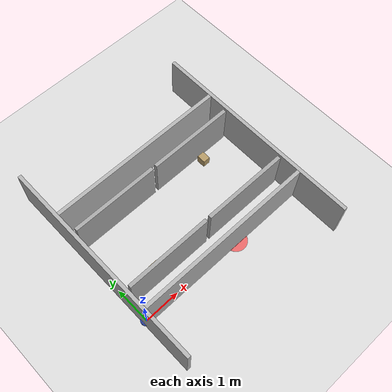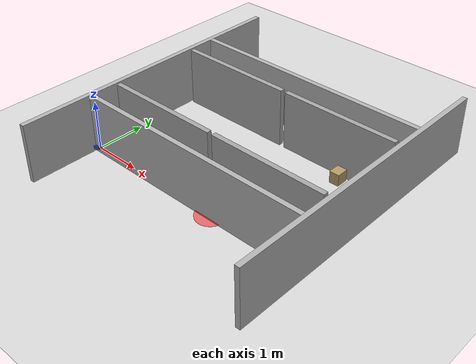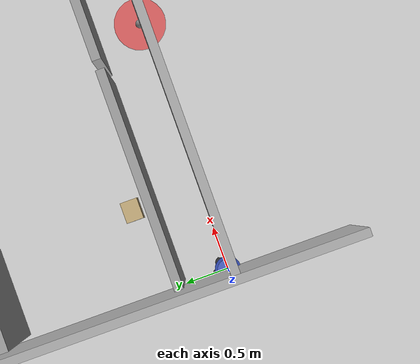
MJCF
<mujoco model="lab_corridor">
  <include file="../assets/lekiwi_base.xml"/>

  <worldbody>
    <!-- Long corridor: 1.5m wide, 5m long passage -->
    <!-- Outer walls -->
    <geom name="wall_north" type="box" size="2.5 0.05 0.6" pos="2.5 3.05 0.6" rgba="0.7 0.7 0.7 1"/>
    <geom name="wall_south" type="box" size="2.5 0.05 0.6" pos="2.5 -0.05 0.6" rgba="0.7 0.7 0.7 1"/>
    <geom name="wall_east"  type="box" size="0.05 3.0 0.6" pos="5.05 1.5 0.6" rgba="0.7 0.7 0.7 1"/>
    <geom name="wall_west"  type="box" size="0.05 3.0 0.6" pos="-0.05 1.5 0.6" rgba="0.7 0.7 0.7 1"/>

    <!-- Corridor inner walls (lower half) -->
    <geom name="corr_bottom_left"  type="box" size="1.2 0.05 0.6" pos="1.25 0.55 0.6" rgba="0.65 0.65 0.65 1"/>
    <geom name="corr_bottom_right" type="box" size="1.2 0.05 0.6" pos="3.75 0.55 0.6" rgba="0.65 0.65 0.65 1"/>

    <!-- Corridor inner walls (upper half) -->
    <geom name="corr_top_left"  type="box" size="1.2 0.05 0.6" pos="1.25 2.45 0.6" rgba="0.65 0.65 0.65 1"/>
    <geom name="corr_top_right" type="box" size="1.2 0.05 0.6" pos="3.75 2.45 0.6" rgba="0.65 0.65 0.65 1"/>

    <!-- Clutter along corridor walls: small boxes -->
    <body name="clutter_1" pos="1.0 0.8 0.15">
      <geom name="cb1" type="box" size="0.12 0.10 0.12" rgba="0.8 0.7 0.5 1" mass="1.0"/>
      <freejoint/>
    </body>
    <body name="clutter_2" pos="4.0 2.2 0.15">
      <geom name="cb2" type="box" size="0.10 0.12 0.12" rgba="0.7 0.6 0.4 1" mass="1.0"/>
      <freejoint/>
    </body>
  </worldbody>
</mujoco>

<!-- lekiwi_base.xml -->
<mujoco model="lekiwi_base">
  <compiler angle="degree" meshdir="assets"/>

  <option timestep="0.005" gravity="0 0 -9.81">
    <flag contact="enable" gravity="enable"/>
  </option>

  <default>
    <geom type="cylinder" density="500" friction="0.6 0.3 0.3" condim="3"/>
    <joint type="hinge" armature="0.001" damping="0.01"/>
    <default class="floor">
      <geom type="plane" size="10 10 0.1" rgba="0.85 0.85 0.85 1"/>
    </default>
    <default class="wall">
      <geom type="box" rgba="0.7 0.7 0.7 1" density="1000"/>
    </default>
  </default>

  <!-- ====== World floor ====== -->
  <worldbody>
    <geom class="floor" pos="0 0 0"/>
    <light directional="true" pos="4 0 8" dir="0 0 -1" diffuse="0.9 0.9 0.9"/>
    <light directional="true" pos="-4 4 6" dir="0 0 -1" diffuse="0.3 0.3 0.3"/>

    <!-- ====== LeKiwi omnidirectional base ====== -->
    <body name="lekiwi_base" pos="0 0 0.06">
      <!-- Chassis: flat cylinder, radius 0.15m, height 0.06m -->
      <geom name="chassis_body" type="cylinder" size="0.15 0.03"
            pos="0 0 0.03" rgba="0.2 0.3 0.7 1" mass="2.5"/>
      <!-- Top plate marker -->
      <geom name="chassis_top" type="cylinder" size="0.12 0.005"
            pos="0 0 0.065" rgba="0.3 0.4 0.8 1" mass="0.1"/>

      <!-- Front direction indicator -->
      <geom name="front_marker" type="box" size="0.03 0.01 0.01"
            pos="0.13 0 0.07" rgba="1 0.5 0 1" mass="0.01"/>

      <!-- 3 omniwheels at 150°, -90°, 30° from forward -->
      <!-- Wheel 1: left-rear (150° / 5π/6) -->
      <body name="wheel_1" pos="0.108 -0.0625 0.025">
        <joint name="wheel_1_joint" type="hinge" axis="0 1 0"/>
        <geom name="wheel_1_geom" type="cylinder" size="0.05 0.012"
              pos="0 0 0" rgba="0.2 0.2 0.2 1" mass="0.08"/>
        <geom name="roller_1" type="sphere" size="0.008" pos="0.05 0 0"
              rgba="0.5 0.5 0.5 1" mass="0.005"/>
      </body>

      <!-- Wheel 2: back (-90° / -π/2) -->
      <body name="wheel_2" pos="0 0.125 0.025">
        <joint name="wheel_2_joint" type="hinge" axis="1 0 0"/>
        <geom name="wheel_2_geom" type="cylinder" size="0.05 0.012"
              pos="0 0 0" rgba="0.2 0.2 0.2 1" mass="0.08"/>
        <geom name="roller_2" type="sphere" size="0.008" pos="0.05 0 0"
              rgba="0.5 0.5 0.5 1" mass="0.005"/>
      </body>

      <!-- Wheel 3: right-front (30° / π/6) -->
      <body name="wheel_3" pos="0.108 0.0625 0.025">
        <joint name="wheel_3_joint" type="hinge" axis="-1 0 0"/>
        <geom name="wheel_3_geom" type="cylinder" size="0.05 0.012"
              pos="0 0 0" rgba="0.2 0.2 0.2 1" mass="0.08"/>
        <geom name="roller_3" type="sphere" size="0.008" pos="0.05 0 0"
              rgba="0.5 0.5 0.5 1" mass="0.005"/>
      </body>

      <!-- D435i camera mount point (referenced by d435i_mount.xml) -->
      <site name="camera_mount" pos="0.10 0 0.08" euler="0 -15 0" size="0.01"/>
    </body>

    <!-- ====== Goal marker ====== -->
    <body name="goal_marker" pos="3 0 0.02" mocap="true">
      <geom name="goal_geom" type="cylinder" size="0.3 0.01"
            rgba="1 0 0 0.5" mass="0"/>
      <site name="goal_site" pos="0 0 0.02" size="0.05"/>
    </body>
  </worldbody>

  <!-- ====== Actuators ====== -->
  <actuator>
    <motor name="motor_1" joint="wheel_1_joint" ctrlrange="-30 30" gear="1"/>
    <motor name="motor_2" joint="wheel_2_joint" ctrlrange="-30 30" gear="1"/>
    <motor name="motor_3" joint="wheel_3_joint" ctrlrange="-30 30" gear="1"/>
  </actuator>

  <!-- ====== Sensors ====== -->
  <sensor>
    <!-- Robot position & orientation -->
    <framepos name="robot_pos" objtype="body" objname="lekiwi_base"/>
    <framequat name="robot_quat" objtype="body" objname="lekiwi_base"/>
    <framelinvel name="robot_linvel" objtype="body" objname="lekiwi_base"/>
    <frameangvel name="robot_angvel" objtype="body" objname="lekiwi_base"/>
    <!-- Goal relative position -->
    <framepos name="goal_pos" objtype="body" objname="goal_marker"/>
    <!-- Wheel velocities -->
    <actuatorfrc name="actuator_force_1" actuator="motor_1"/>
    <actuatorfrc name="actuator_force_2" actuator="motor_2"/>
    <actuatorfrc name="actuator_force_3" actuator="motor_3"/>
  </sensor>
</mujoco>
